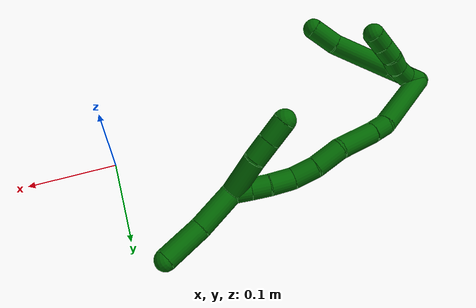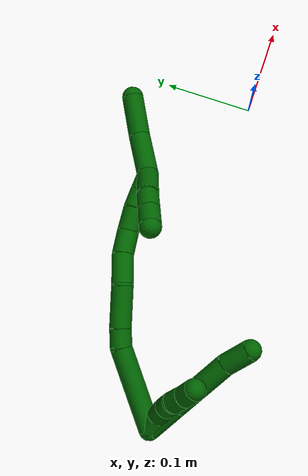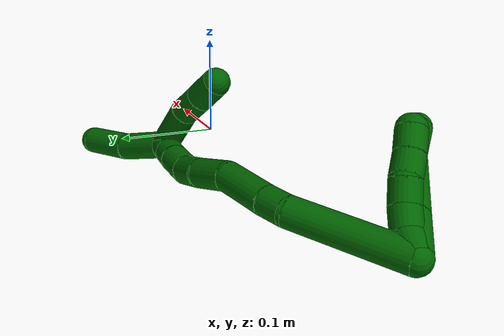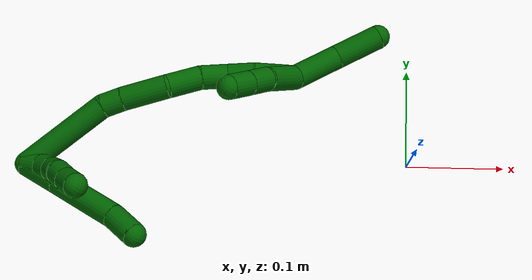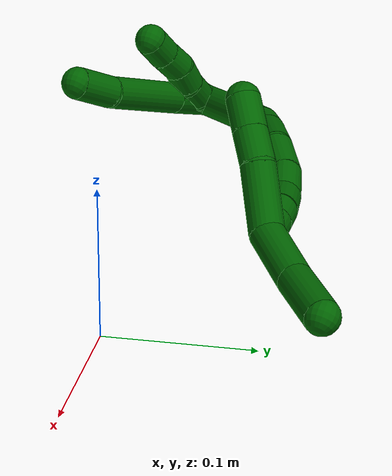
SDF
<sdf version="1.7">
 <world name="default">
  <model name="6">
   <static>0</static>
   <link name="6">
    <collision name="collision-cylinder-e_1_2_8">
     <pose>0.017341 -0.006133 -0.010673 2.62005 0.953501 2.18782</pose>
     <geometry><cylinder><radius>0.0125</radius><length>0.042531</length></cylinder></geometry>
     <surface>
      <friction><ode><mu>1.16</mu><mu2>1.16</mu2><slip1>0</slip1><slip2>0</slip2></ode></friction>
      <contact><ode><kp>1e+06</kp><kd>1</kd><max_vel>0</max_vel><min_depth>0.001</min_depth></ode></contact>
     </surface>
    </collision>
    <visual name="visual-cylinder-e_1_2_8">
     <pose>0.017341 -0.006133 -0.010673 2.62005 0.953501 2.18782</pose>
     <geometry><cylinder><radius>0.0125</radius><length>0.042531</length></cylinder></geometry>
     <material><ambient>0 0.392157 0.003922 1</ambient></material>
    </visual>
    <collision name="collision-cylinder-e_2_8_9">
     <pose>0.065241 -0.023077 -0.039488 2.6042 0.966061 2.17467</pose>
     <geometry><cylinder><radius>0.0125</radius><length>0.074294</length></cylinder></geometry>
     <surface>
      <friction><ode><mu>1.16</mu><mu2>1.16</mu2><slip1>0</slip1><slip2>0</slip2></ode></friction>
      <contact><ode><kp>1e+06</kp><kd>1</kd><max_vel>0</max_vel><min_depth>0.001</min_depth></ode></contact>
     </surface>
    </collision>
    <visual name="visual-cylinder-e_2_8_9">
     <pose>0.065241 -0.023077 -0.039488 2.6042 0.966061 2.17467</pose>
     <geometry><cylinder><radius>0.0125</radius><length>0.074294</length></cylinder></geometry>
     <material><ambient>0 0.392157 0.003922 1</ambient></material>
    </visual>
    <collision name="collision-cylinder-e_3_9_6">
     <pose>0.109509 -0.041138 -0.063517 2.25268 0.972752 1.6752</pose>
     <geometry><cylinder><radius>0.0125</radius><length>0.033174</length></cylinder></geometry>
     <surface>
      <friction><ode><mu>1.16</mu><mu2>1.16</mu2><slip1>0</slip1><slip2>0</slip2></ode></friction>
      <contact><ode><kp>1e+06</kp><kd>1</kd><max_vel>0</max_vel><min_depth>0.001</min_depth></ode></contact>
     </surface>
    </collision>
    <visual name="visual-cylinder-e_3_9_6">
     <pose>0.109509 -0.041138 -0.063517 2.25268 0.972752 1.6752</pose>
     <geometry><cylinder><radius>0.0125</radius><length>0.033174</length></cylinder></geometry>
     <material><ambient>0 0.392157 0.003922 1</ambient></material>
    </visual>
    <collision name="collision-cylinder-e_1_2_10">
     <pose>0.009375 8e-06 -0.00348 -3.13941 1.21531 -3.13846</pose>
     <geometry><cylinder><radius>0.0125</radius><length>0.02</length></cylinder></geometry>
     <surface>
      <friction><ode><mu>1.16</mu><mu2>1.16</mu2><slip1>0</slip1><slip2>0</slip2></ode></friction>
      <contact><ode><kp>1e+06</kp><kd>1</kd><max_vel>0</max_vel><min_depth>0.001</min_depth></ode></contact>
     </surface>
    </collision>
    <visual name="visual-cylinder-e_1_2_10">
     <pose>0.009375 8e-06 -0.00348 -3.13941 1.21531 -3.13846</pose>
     <geometry><cylinder><radius>0.0125</radius><length>0.02</length></cylinder></geometry>
     <material><ambient>0 0.392157 0.003922 1</ambient></material>
    </visual>
    <collision name="collision-cylinder-e_2_10_11">
     <pose>0.028605 -0.001495 -0.007727 2.0402 1.40068 1.88234</pose>
     <geometry><cylinder><radius>0.0125</radius><length>0.02</length></cylinder></geometry>
     <surface>
      <friction><ode><mu>1.16</mu><mu2>1.16</mu2><slip1>0</slip1><slip2>0</slip2></ode></friction>
      <contact><ode><kp>1e+06</kp><kd>1</kd><max_vel>0</max_vel><min_depth>0.001</min_depth></ode></contact>
     </surface>
    </collision>
    <visual name="visual-cylinder-e_2_10_11">
     <pose>0.028605 -0.001495 -0.007727 2.0402 1.40068 1.88234</pose>
     <geometry><cylinder><radius>0.0125</radius><length>0.02</length></cylinder></geometry>
     <material><ambient>0 0.392157 0.003922 1</ambient></material>
    </visual>
    <collision name="collision-cylinder-e_3_11_12">
     <pose>0.048115 -0.005055 -0.006882 0.904832 1.30701 0.7126</pose>
     <geometry><cylinder><radius>0.0125</radius><length>0.02</length></cylinder></geometry>
     <surface>
      <friction><ode><mu>1.16</mu><mu2>1.16</mu2><slip1>0</slip1><slip2>0</slip2></ode></friction>
      <contact><ode><kp>1e+06</kp><kd>1</kd><max_vel>0</max_vel><min_depth>0.001</min_depth></ode></contact>
     </surface>
    </collision>
    <visual name="visual-cylinder-e_3_11_12">
     <pose>0.048115 -0.005055 -0.006882 0.904832 1.30701 0.7126</pose>
     <geometry><cylinder><radius>0.0125</radius><length>0.02</length></cylinder></geometry>
     <material><ambient>0 0.392157 0.003922 1</ambient></material>
    </visual>
    <collision name="collision-cylinder-e_4_12_13">
     <pose>0.067036 -0.010834 -0.005728 1.69271 1.18564 1.30129</pose>
     <geometry><cylinder><radius>0.0125</radius><length>0.02</length></cylinder></geometry>
     <surface>
      <friction><ode><mu>1.16</mu><mu2>1.16</mu2><slip1>0</slip1><slip2>0</slip2></ode></friction>
      <contact><ode><kp>1e+06</kp><kd>1</kd><max_vel>0</max_vel><min_depth>0.001</min_depth></ode></contact>
     </surface>
    </collision>
    <visual name="visual-cylinder-e_4_12_13">
     <pose>0.067036 -0.010834 -0.005728 1.69271 1.18564 1.30129</pose>
     <geometry><cylinder><radius>0.0125</radius><length>0.02</length></cylinder></geometry>
     <material><ambient>0 0.392157 0.003922 1</ambient></material>
    </visual>
    <collision name="collision-cylinder-e_5_13_5">
     <pose>0.085868 -0.017479 -0.006312 1.61442 1.27461 1.3166</pose>
     <geometry><cylinder><radius>0.0125</radius><length>0.02</length></cylinder></geometry>
     <surface>
      <friction><ode><mu>1.16</mu><mu2>1.16</mu2><slip1>0</slip1><slip2>0</slip2></ode></friction>
      <contact><ode><kp>1e+06</kp><kd>1</kd><max_vel>0</max_vel><min_depth>0.001</min_depth></ode></contact>
     </surface>
    </collision>
    <visual name="visual-cylinder-e_5_13_5">
     <pose>0.085868 -0.017479 -0.006312 1.61442 1.27461 1.3166</pose>
     <geometry><cylinder><radius>0.0125</radius><length>0.02</length></cylinder></geometry>
     <material><ambient>0 0.392157 0.003922 1</ambient></material>
    </visual>
    <collision name="collision-cylinder-e_1_2_14">
     <pose>0.02629 0.037345 -0.016615 -1.98941 0.571576 -0.849579</pose>
     <geometry><cylinder><radius>0.0125</radius><length>0.0972</length></cylinder></geometry>
     <surface>
      <friction><ode><mu>1.16</mu><mu2>1.16</mu2><slip1>0</slip1><slip2>0</slip2></ode></friction>
      <contact><ode><kp>1e+06</kp><kd>1</kd><max_vel>0</max_vel><min_depth>0.001</min_depth></ode></contact>
     </surface>
    </collision>
    <visual name="visual-cylinder-e_1_2_14">
     <pose>0.02629 0.037345 -0.016615 -1.98941 0.571576 -0.849579</pose>
     <geometry><cylinder><radius>0.0125</radius><length>0.0972</length></cylinder></geometry>
     <material><ambient>0 0.392157 0.003922 1</ambient></material>
    </visual>
    <collision name="collision-cylinder-e_2_14_15">
     <pose>0.059447 0.080765 -0.0391 -2.33905 0.682594 -1.39397</pose>
     <geometry><cylinder><radius>0.0125</radius><length>0.02177</length></cylinder></geometry>
     <surface>
      <friction><ode><mu>1.16</mu><mu2>1.16</mu2><slip1>0</slip1><slip2>0</slip2></ode></friction>
      <contact><ode><kp>1e+06</kp><kd>1</kd><max_vel>0</max_vel><min_depth>0.001</min_depth></ode></contact>
     </surface>
    </collision>
    <visual name="visual-cylinder-e_2_14_15">
     <pose>0.059447 0.080765 -0.0391 -2.33905 0.682594 -1.39397</pose>
     <geometry><cylinder><radius>0.0125</radius><length>0.02177</length></cylinder></geometry>
     <material><ambient>0 0.392157 0.003922 1</ambient></material>
    </visual>
    <collision name="collision-cylinder-e_3_15_16">
     <pose>0.08243 0.098569 -0.058439 -2.42514 0.734072 -1.59736</pose>
     <geometry><cylinder><radius>0.0125</radius><length>0.048115</length></cylinder></geometry>
     <surface>
      <friction><ode><mu>1.16</mu><mu2>1.16</mu2><slip1>0</slip1><slip2>0</slip2></ode></friction>
      <contact><ode><kp>1e+06</kp><kd>1</kd><max_vel>0</max_vel><min_depth>0.001</min_depth></ode></contact>
     </surface>
    </collision>
    <visual name="visual-cylinder-e_3_15_16">
     <pose>0.08243 0.098569 -0.058439 -2.42514 0.734072 -1.59736</pose>
     <geometry><cylinder><radius>0.0125</radius><length>0.048115</length></cylinder></geometry>
     <material><ambient>0 0.392157 0.003922 1</ambient></material>
    </visual>
    <collision name="collision-cylinder-e_4_16_17">
     <pose>0.105902 0.119929 -0.084497 -2.48852 0.434559 -1.15538</pose>
     <geometry><cylinder><radius>0.0125</radius><length>0.034946</length></cylinder></geometry>
     <surface>
      <friction><ode><mu>1.16</mu><mu2>1.16</mu2><slip1>0</slip1><slip2>0</slip2></ode></friction>
      <contact><ode><kp>1e+06</kp><kd>1</kd><max_vel>0</max_vel><min_depth>0.001</min_depth></ode></contact>
     </surface>
    </collision>
    <visual name="visual-cylinder-e_4_16_17">
     <pose>0.105902 0.119929 -0.084497 -2.48852 0.434559 -1.15538</pose>
     <geometry><cylinder><radius>0.0125</radius><length>0.034946</length></cylinder></geometry>
     <material><ambient>0 0.392157 0.003922 1</ambient></material>
    </visual>
    <collision name="collision-cylinder-e_5_17_18">
     <pose>0.119828 0.134892 -0.108596 -2.70775 0.477802 -1.67057</pose>
     <geometry><cylinder><radius>0.0125</radius><length>0.028574</length></cylinder></geometry>
     <surface>
      <friction><ode><mu>1.16</mu><mu2>1.16</mu2><slip1>0</slip1><slip2>0</slip2></ode></friction>
      <contact><ode><kp>1e+06</kp><kd>1</kd><max_vel>0</max_vel><min_depth>0.001</min_depth></ode></contact>
     </surface>
    </collision>
    <visual name="visual-cylinder-e_5_17_18">
     <pose>0.119828 0.134892 -0.108596 -2.70775 0.477802 -1.67057</pose>
     <geometry><cylinder><radius>0.0125</radius><length>0.028574</length></cylinder></geometry>
     <material><ambient>0 0.392157 0.003922 1</ambient></material>
    </visual>
    <collision name="collision-cylinder-e_6_18_19">
     <pose>0.135966 0.144349 -0.129421 -2.7248 0.75421 -2.16076</pose>
     <geometry><cylinder><radius>0.0125</radius><length>0.027949</length></cylinder></geometry>
     <surface>
      <friction><ode><mu>1.16</mu><mu2>1.16</mu2><slip1>0</slip1><slip2>0</slip2></ode></friction>
      <contact><ode><kp>1e+06</kp><kd>1</kd><max_vel>0</max_vel><min_depth>0.001</min_depth></ode></contact>
     </surface>
    </collision>
    <visual name="visual-cylinder-e_6_18_19">
     <pose>0.135966 0.144349 -0.129421 -2.7248 0.75421 -2.16076</pose>
     <geometry><cylinder><radius>0.0125</radius><length>0.027949</length></cylinder></geometry>
     <material><ambient>0 0.392157 0.003922 1</ambient></material>
    </visual>
    <collision name="collision-cylinder-e_7_19_20">
     <pose>0.152373 0.150545 -0.146464 -2.8795 0.707023 -2.4555</pose>
     <geometry><cylinder><radius>0.0125</radius><length>0.021053</length></cylinder></geometry>
     <surface>
      <friction><ode><mu>1.16</mu><mu2>1.16</mu2><slip1>0</slip1><slip2>0</slip2></ode></friction>
      <contact><ode><kp>1e+06</kp><kd>1</kd><max_vel>0</max_vel><min_depth>0.001</min_depth></ode></contact>
     </surface>
    </collision>
    <visual name="visual-cylinder-e_7_19_20">
     <pose>0.152373 0.150545 -0.146464 -2.8795 0.707023 -2.4555</pose>
     <geometry><cylinder><radius>0.0125</radius><length>0.021053</length></cylinder></geometry>
     <material><ambient>0 0.392157 0.003922 1</ambient></material>
    </visual>
    <collision name="collision-cylinder-e_8_20_1">
     <pose>0.166061 0.15444 -0.161523 -2.89808 0.736788 -2.52766</pose>
     <geometry><cylinder><radius>0.0125</radius><length>0.020393</length></cylinder></geometry>
     <surface>
      <friction><ode><mu>1.16</mu><mu2>1.16</mu2><slip1>0</slip1><slip2>0</slip2></ode></friction>
      <contact><ode><kp>1e+06</kp><kd>1</kd><max_vel>0</max_vel><min_depth>0.001</min_depth></ode></contact>
     </surface>
    </collision>
    <visual name="visual-cylinder-e_8_20_1">
     <pose>0.166061 0.15444 -0.161523 -2.89808 0.736788 -2.52766</pose>
     <geometry><cylinder><radius>0.0125</radius><length>0.020393</length></cylinder></geometry>
     <material><ambient>0 0.392157 0.003922 1</ambient></material>
    </visual>
    <collision name="collision-cylinder-e_1_1_21">
     <pose>0.180938 0.174174 -0.185159 -2.3093 0.319915 -0.700033</pose>
     <geometry><cylinder><radius>0.0125</radius><length>0.051039</length></cylinder></geometry>
     <surface>
      <friction><ode><mu>1.16</mu><mu2>1.16</mu2><slip1>0</slip1><slip2>0</slip2></ode></friction>
      <contact><ode><kp>1e+06</kp><kd>1</kd><max_vel>0</max_vel><min_depth>0.001</min_depth></ode></contact>
     </surface>
    </collision>
    <visual name="visual-cylinder-e_1_1_21">
     <pose>0.180938 0.174174 -0.185159 -2.3093 0.319915 -0.700033</pose>
     <geometry><cylinder><radius>0.0125</radius><length>0.051039</length></cylinder></geometry>
     <material><ambient>0 0.392157 0.003922 1</ambient></material>
    </visual>
    <collision name="collision-cylinder-e_2_21_4">
     <pose>0.200423 0.208704 -0.215319 -2.26571 0.487138 -0.975788</pose>
     <geometry><cylinder><radius>0.0125</radius><length>0.048961</length></cylinder></geometry>
     <surface>
      <friction><ode><mu>1.16</mu><mu2>1.16</mu2><slip1>0</slip1><slip2>0</slip2></ode></friction>
      <contact><ode><kp>1e+06</kp><kd>1</kd><max_vel>0</max_vel><min_depth>0.001</min_depth></ode></contact>
     </surface>
    </collision>
    <visual name="visual-cylinder-e_2_21_4">
     <pose>0.200423 0.208704 -0.215319 -2.26571 0.487138 -0.975788</pose>
     <geometry><cylinder><radius>0.0125</radius><length>0.048961</length></cylinder></geometry>
     <material><ambient>0 0.392157 0.003922 1</ambient></material>
    </visual>
    <collision name="collision-cylinder-e_1_1_22">
     <pose>0.178583 0.146192 -0.147715 0.444579 0.237621 0.053949</pose>
     <geometry><cylinder><radius>0.0125</radius><length>0.048178</length></cylinder></geometry>
     <surface>
      <friction><ode><mu>1.16</mu><mu2>1.16</mu2><slip1>0</slip1><slip2>0</slip2></ode></friction>
      <contact><ode><kp>1e+06</kp><kd>1</kd><max_vel>0</max_vel><min_depth>0.001</min_depth></ode></contact>
     </surface>
    </collision>
    <visual name="visual-cylinder-e_1_1_22">
     <pose>0.178583 0.146192 -0.147715 0.444579 0.237621 0.053949</pose>
     <geometry><cylinder><radius>0.0125</radius><length>0.048178</length></cylinder></geometry>
     <material><ambient>0 0.392157 0.003922 1</ambient></material>
    </visual>
    <collision name="collision-cylinder-e_2_22_23">
     <pose>0.185024 0.129336 -0.115791 0.561529 0.060428 0.017431</pose>
     <geometry><cylinder><radius>0.0125</radius><length>0.025536</length></cylinder></geometry>
     <surface>
      <friction><ode><mu>1.16</mu><mu2>1.16</mu2><slip1>0</slip1><slip2>0</slip2></ode></friction>
      <contact><ode><kp>1e+06</kp><kd>1</kd><max_vel>0</max_vel><min_depth>0.001</min_depth></ode></contact>
     </surface>
    </collision>
    <visual name="visual-cylinder-e_2_22_23">
     <pose>0.185024 0.129336 -0.115791 0.561529 0.060428 0.017431</pose>
     <geometry><cylinder><radius>0.0125</radius><length>0.025536</length></cylinder></geometry>
     <material><ambient>0 0.392157 0.003922 1</ambient></material>
    </visual>
    <collision name="collision-cylinder-e_3_23_3">
     <pose>0.186756 0.115733 -0.093808 0.546976 0.073143 0.020526</pose>
     <geometry><cylinder><radius>0.0125</radius><length>0.026286</length></cylinder></geometry>
     <surface>
      <friction><ode><mu>1.16</mu><mu2>1.16</mu2><slip1>0</slip1><slip2>0</slip2></ode></friction>
      <contact><ode><kp>1e+06</kp><kd>1</kd><max_vel>0</max_vel><min_depth>0.001</min_depth></ode></contact>
     </surface>
    </collision>
    <visual name="visual-cylinder-e_3_23_3">
     <pose>0.186756 0.115733 -0.093808 0.546976 0.073143 0.020526</pose>
     <geometry><cylinder><radius>0.0125</radius><length>0.026286</length></cylinder></geometry>
     <material><ambient>0 0.392157 0.003922 1</ambient></material>
    </visual>
    <collision name="collision-sphere-3">
     <pose>0.187716 0.108915 -0.082613 0 -0 0</pose>
     <geometry><sphere><radius>0.0125</radius></sphere></geometry>
     <surface>
      <friction><ode><mu>1.16</mu><mu2>1.16</mu2><slip1>0</slip1><slip2>0</slip2></ode></friction>
      <contact><ode><kp>1e+06</kp><kd>1</kd><max_vel>0</max_vel><min_depth>0.001</min_depth></ode></contact>
     </surface>
    </collision>
    <visual name="visual-sphere-3">
     <pose>0.187716 0.108915 -0.082613 0 -0 0</pose>
     <geometry><sphere><radius>0.0125</radius></sphere></geometry>
     <material><ambient>0 0.392157 0.003922 1</ambient></material>
    </visual>
    <collision name="collision-sphere-23">
     <pose>0.185795 0.12255 -0.105004 0 -0 0</pose>
     <geometry><sphere><radius>0.0125</radius></sphere></geometry>
     <surface>
      <friction><ode><mu>1.16</mu><mu2>1.16</mu2><slip1>0</slip1><slip2>0</slip2></ode></friction>
      <contact><ode><kp>1e+06</kp><kd>1</kd><max_vel>0</max_vel><min_depth>0.001</min_depth></ode></contact>
     </surface>
    </collision>
    <visual name="visual-sphere-23">
     <pose>0.185795 0.12255 -0.105004 0 -0 0</pose>
     <geometry><sphere><radius>0.0125</radius></sphere></geometry>
     <material><ambient>0 0.392157 0.003922 1</ambient></material>
    </visual>
    <collision name="collision-sphere-22">
     <pose>0.184253 0.136123 -0.126579 0 -0 0</pose>
     <geometry><sphere><radius>0.0125</radius></sphere></geometry>
     <surface>
      <friction><ode><mu>1.16</mu><mu2>1.16</mu2><slip1>0</slip1><slip2>0</slip2></ode></friction>
      <contact><ode><kp>1e+06</kp><kd>1</kd><max_vel>0</max_vel><min_depth>0.001</min_depth></ode></contact>
     </surface>
    </collision>
    <visual name="visual-sphere-22">
     <pose>0.184253 0.136123 -0.126579 0 -0 0</pose>
     <geometry><sphere><radius>0.0125</radius></sphere></geometry>
     <material><ambient>0 0.392157 0.003922 1</ambient></material>
    </visual>
    <collision name="collision-sphere-4">
     <pose>0.211882 0.225321 -0.229171 0 -0 0</pose>
     <geometry><sphere><radius>0.0125</radius></sphere></geometry>
     <surface>
      <friction><ode><mu>1.16</mu><mu2>1.16</mu2><slip1>0</slip1><slip2>0</slip2></ode></friction>
      <contact><ode><kp>1e+06</kp><kd>1</kd><max_vel>0</max_vel><min_depth>0.001</min_depth></ode></contact>
     </surface>
    </collision>
    <visual name="visual-sphere-4">
     <pose>0.211882 0.225321 -0.229171 0 -0 0</pose>
     <geometry><sphere><radius>0.0125</radius></sphere></geometry>
     <material><ambient>0 0.392157 0.003922 1</ambient></material>
    </visual>
    <collision name="collision-sphere-21">
     <pose>0.188964 0.192088 -0.201467 0 -0 0</pose>
     <geometry><sphere><radius>0.0125</radius></sphere></geometry>
     <surface>
      <friction><ode><mu>1.16</mu><mu2>1.16</mu2><slip1>0</slip1><slip2>0</slip2></ode></friction>
      <contact><ode><kp>1e+06</kp><kd>1</kd><max_vel>0</max_vel><min_depth>0.001</min_depth></ode></contact>
     </surface>
    </collision>
    <visual name="visual-sphere-21">
     <pose>0.188964 0.192088 -0.201467 0 -0 0</pose>
     <geometry><sphere><radius>0.0125</radius></sphere></geometry>
     <material><ambient>0 0.392157 0.003922 1</ambient></material>
    </visual>
    <collision name="collision-sphere-1">
     <pose>0.172912 0.156261 -0.168852 0 -0 0</pose>
     <geometry><sphere><radius>0.0125</radius></sphere></geometry>
     <surface>
      <friction><ode><mu>1.16</mu><mu2>1.16</mu2><slip1>0</slip1><slip2>0</slip2></ode></friction>
      <contact><ode><kp>1e+06</kp><kd>1</kd><max_vel>0</max_vel><min_depth>0.001</min_depth></ode></contact>
     </surface>
    </collision>
    <visual name="visual-sphere-1">
     <pose>0.172912 0.156261 -0.168852 0 -0 0</pose>
     <geometry><sphere><radius>0.0125</radius></sphere></geometry>
     <material><ambient>0 0.392157 0.003922 1</ambient></material>
    </visual>
    <collision name="collision-sphere-11">
     <pose>0.038461 -0.003004 -0.008492 0 -0 0</pose>
     <geometry><sphere><radius>0.0125</radius></sphere></geometry>
     <surface>
      <friction><ode><mu>1.16</mu><mu2>1.16</mu2><slip1>0</slip1><slip2>0</slip2></ode></friction>
      <contact><ode><kp>1e+06</kp><kd>1</kd><max_vel>0</max_vel><min_depth>0.001</min_depth></ode></contact>
     </surface>
    </collision>
    <visual name="visual-sphere-11">
     <pose>0.038461 -0.003004 -0.008492 0 -0 0</pose>
     <geometry><sphere><radius>0.0125</radius></sphere></geometry>
     <material><ambient>0 0.392157 0.003922 1</ambient></material>
    </visual>
    <collision name="collision-sphere-10">
     <pose>0.01875 1.5e-05 -0.006961 0 -0 0</pose>
     <geometry><sphere><radius>0.0125</radius></sphere></geometry>
     <surface>
      <friction><ode><mu>1.16</mu><mu2>1.16</mu2><slip1>0</slip1><slip2>0</slip2></ode></friction>
      <contact><ode><kp>1e+06</kp><kd>1</kd><max_vel>0</max_vel><min_depth>0.001</min_depth></ode></contact>
     </surface>
    </collision>
    <visual name="visual-sphere-10">
     <pose>0.01875 1.5e-05 -0.006961 0 -0 0</pose>
     <geometry><sphere><radius>0.0125</radius></sphere></geometry>
     <material><ambient>0 0.392157 0.003922 1</ambient></material>
    </visual>
    <collision name="collision-sphere-6">
     <pose>0.123217 -0.048389 -0.069403 0 -0 0</pose>
     <geometry><sphere><radius>0.0125</radius></sphere></geometry>
     <surface>
      <friction><ode><mu>1.16</mu><mu2>1.16</mu2><slip1>0</slip1><slip2>0</slip2></ode></friction>
      <contact><ode><kp>1e+06</kp><kd>1</kd><max_vel>0</max_vel><min_depth>0.001</min_depth></ode></contact>
     </surface>
    </collision>
    <visual name="visual-sphere-6">
     <pose>0.123217 -0.048389 -0.069403 0 -0 0</pose>
     <geometry><sphere><radius>0.0125</radius></sphere></geometry>
     <material><ambient>0 0.392157 0.003922 1</ambient></material>
    </visual>
    <collision name="collision-sphere-9">
     <pose>0.0958 -0.033888 -0.057631 0 -0 0</pose>
     <geometry><sphere><radius>0.0125</radius></sphere></geometry>
     <surface>
      <friction><ode><mu>1.16</mu><mu2>1.16</mu2><slip1>0</slip1><slip2>0</slip2></ode></friction>
      <contact><ode><kp>1e+06</kp><kd>1</kd><max_vel>0</max_vel><min_depth>0.001</min_depth></ode></contact>
     </surface>
    </collision>
    <visual name="visual-sphere-9">
     <pose>0.0958 -0.033888 -0.057631 0 -0 0</pose>
     <geometry><sphere><radius>0.0125</radius></sphere></geometry>
     <material><ambient>0 0.392157 0.003922 1</ambient></material>
    </visual>
    <collision name="collision-sphere-2">
     <geometry><sphere><radius>0.0125</radius></sphere></geometry>
     <surface>
      <friction><ode><mu>1.16</mu><mu2>1.16</mu2><slip1>0</slip1><slip2>0</slip2></ode></friction>
      <contact><ode><kp>1e+06</kp><kd>1</kd><max_vel>0</max_vel><min_depth>0.001</min_depth></ode></contact>
     </surface>
    </collision>
    <visual name="visual-sphere-2">
     <geometry><sphere><radius>0.0125</radius></sphere></geometry>
     <material><ambient>0 0.392157 0.003922 1</ambient></material>
    </visual>
    <collision name="collision-sphere-19">
     <pose>0.145535 0.148472 -0.138734 0 -0 0</pose>
     <geometry><sphere><radius>0.0125</radius></sphere></geometry>
     <surface>
      <friction><ode><mu>1.16</mu><mu2>1.16</mu2><slip1>0</slip1><slip2>0</slip2></ode></friction>
      <contact><ode><kp>1e+06</kp><kd>1</kd><max_vel>0</max_vel><min_depth>0.001</min_depth></ode></contact>
     </surface>
    </collision>
    <visual name="visual-sphere-19">
     <pose>0.145535 0.148472 -0.138734 0 -0 0</pose>
     <geometry><sphere><radius>0.0125</radius></sphere></geometry>
     <material><ambient>0 0.392157 0.003922 1</ambient></material>
    </visual>
    <collision name="collision-sphere-8">
     <pose>0.034682 -0.012265 -0.021345 0 -0 0</pose>
     <geometry><sphere><radius>0.0125</radius></sphere></geometry>
     <surface>
      <friction><ode><mu>1.16</mu><mu2>1.16</mu2><slip1>0</slip1><slip2>0</slip2></ode></friction>
      <contact><ode><kp>1e+06</kp><kd>1</kd><max_vel>0</max_vel><min_depth>0.001</min_depth></ode></contact>
     </surface>
    </collision>
    <visual name="visual-sphere-8">
     <pose>0.034682 -0.012265 -0.021345 0 -0 0</pose>
     <geometry><sphere><radius>0.0125</radius></sphere></geometry>
     <material><ambient>0 0.392157 0.003922 1</ambient></material>
    </visual>
    <collision name="collision-sphere-12">
     <pose>0.057769 -0.007105 -0.005271 0 -0 0</pose>
     <geometry><sphere><radius>0.0125</radius></sphere></geometry>
     <surface>
      <friction><ode><mu>1.16</mu><mu2>1.16</mu2><slip1>0</slip1><slip2>0</slip2></ode></friction>
      <contact><ode><kp>1e+06</kp><kd>1</kd><max_vel>0</max_vel><min_depth>0.001</min_depth></ode></contact>
     </surface>
    </collision>
    <visual name="visual-sphere-12">
     <pose>0.057769 -0.007105 -0.005271 0 -0 0</pose>
     <geometry><sphere><radius>0.0125</radius></sphere></geometry>
     <material><ambient>0 0.392157 0.003922 1</ambient></material>
    </visual>
    <collision name="collision-sphere-13">
     <pose>0.076304 -0.014563 -0.006185 0 -0 0</pose>
     <geometry><sphere><radius>0.0125</radius></sphere></geometry>
     <surface>
      <friction><ode><mu>1.16</mu><mu2>1.16</mu2><slip1>0</slip1><slip2>0</slip2></ode></friction>
      <contact><ode><kp>1e+06</kp><kd>1</kd><max_vel>0</max_vel><min_depth>0.001</min_depth></ode></contact>
     </surface>
    </collision>
    <visual name="visual-sphere-13">
     <pose>0.076304 -0.014563 -0.006185 0 -0 0</pose>
     <geometry><sphere><radius>0.0125</radius></sphere></geometry>
     <material><ambient>0 0.392157 0.003922 1</ambient></material>
    </visual>
    <collision name="collision-sphere-5">
     <pose>0.095433 -0.020395 -0.006439 0 -0 0</pose>
     <geometry><sphere><radius>0.0125</radius></sphere></geometry>
     <surface>
      <friction><ode><mu>1.16</mu><mu2>1.16</mu2><slip1>0</slip1><slip2>0</slip2></ode></friction>
      <contact><ode><kp>1e+06</kp><kd>1</kd><max_vel>0</max_vel><min_depth>0.001</min_depth></ode></contact>
     </surface>
    </collision>
    <visual name="visual-sphere-5">
     <pose>0.095433 -0.020395 -0.006439 0 -0 0</pose>
     <geometry><sphere><radius>0.0125</radius></sphere></geometry>
     <material><ambient>0 0.392157 0.003922 1</ambient></material>
    </visual>
    <collision name="collision-sphere-14">
     <pose>0.052581 0.074691 -0.033231 0 -0 0</pose>
     <geometry><sphere><radius>0.0125</radius></sphere></geometry>
     <surface>
      <friction><ode><mu>1.16</mu><mu2>1.16</mu2><slip1>0</slip1><slip2>0</slip2></ode></friction>
      <contact><ode><kp>1e+06</kp><kd>1</kd><max_vel>0</max_vel><min_depth>0.001</min_depth></ode></contact>
     </surface>
    </collision>
    <visual name="visual-sphere-14">
     <pose>0.052581 0.074691 -0.033231 0 -0 0</pose>
     <geometry><sphere><radius>0.0125</radius></sphere></geometry>
     <material><ambient>0 0.392157 0.003922 1</ambient></material>
    </visual>
    <collision name="collision-sphere-15">
     <pose>0.066314 0.086839 -0.044969 0 -0 0</pose>
     <geometry><sphere><radius>0.0125</radius></sphere></geometry>
     <surface>
      <friction><ode><mu>1.16</mu><mu2>1.16</mu2><slip1>0</slip1><slip2>0</slip2></ode></friction>
      <contact><ode><kp>1e+06</kp><kd>1</kd><max_vel>0</max_vel><min_depth>0.001</min_depth></ode></contact>
     </surface>
    </collision>
    <visual name="visual-sphere-15">
     <pose>0.066314 0.086839 -0.044969 0 -0 0</pose>
     <geometry><sphere><radius>0.0125</radius></sphere></geometry>
     <material><ambient>0 0.392157 0.003922 1</ambient></material>
    </visual>
    <collision name="collision-sphere-16">
     <pose>0.098546 0.110298 -0.071909 0 -0 0</pose>
     <geometry><sphere><radius>0.0125</radius></sphere></geometry>
     <surface>
      <friction><ode><mu>1.16</mu><mu2>1.16</mu2><slip1>0</slip1><slip2>0</slip2></ode></friction>
      <contact><ode><kp>1e+06</kp><kd>1</kd><max_vel>0</max_vel><min_depth>0.001</min_depth></ode></contact>
     </surface>
    </collision>
    <visual name="visual-sphere-16">
     <pose>0.098546 0.110298 -0.071909 0 -0 0</pose>
     <geometry><sphere><radius>0.0125</radius></sphere></geometry>
     <material><ambient>0 0.392157 0.003922 1</ambient></material>
    </visual>
    <collision name="collision-sphere-17">
     <pose>0.113258 0.129559 -0.097084 0 -0 0</pose>
     <geometry><sphere><radius>0.0125</radius></sphere></geometry>
     <surface>
      <friction><ode><mu>1.16</mu><mu2>1.16</mu2><slip1>0</slip1><slip2>0</slip2></ode></friction>
      <contact><ode><kp>1e+06</kp><kd>1</kd><max_vel>0</max_vel><min_depth>0.001</min_depth></ode></contact>
     </surface>
    </collision>
    <visual name="visual-sphere-17">
     <pose>0.113258 0.129559 -0.097084 0 -0 0</pose>
     <geometry><sphere><radius>0.0125</radius></sphere></geometry>
     <material><ambient>0 0.392157 0.003922 1</ambient></material>
    </visual>
    <collision name="collision-sphere-18">
     <pose>0.126398 0.140226 -0.120108 0 -0 0</pose>
     <geometry><sphere><radius>0.0125</radius></sphere></geometry>
     <surface>
      <friction><ode><mu>1.16</mu><mu2>1.16</mu2><slip1>0</slip1><slip2>0</slip2></ode></friction>
      <contact><ode><kp>1e+06</kp><kd>1</kd><max_vel>0</max_vel><min_depth>0.001</min_depth></ode></contact>
     </surface>
    </collision>
    <visual name="visual-sphere-18">
     <pose>0.126398 0.140226 -0.120108 0 -0 0</pose>
     <geometry><sphere><radius>0.0125</radius></sphere></geometry>
     <material><ambient>0 0.392157 0.003922 1</ambient></material>
    </visual>
    <collision name="collision-sphere-20">
     <pose>0.15921 0.152619 -0.154193 0 -0 0</pose>
     <geometry><sphere><radius>0.0125</radius></sphere></geometry>
     <surface>
      <friction><ode><mu>1.16</mu><mu2>1.16</mu2><slip1>0</slip1><slip2>0</slip2></ode></friction>
      <contact><ode><kp>1e+06</kp><kd>1</kd><max_vel>0</max_vel><min_depth>0.001</min_depth></ode></contact>
     </surface>
    </collision>
    <visual name="visual-sphere-20">
     <pose>0.15921 0.152619 -0.154193 0 -0 0</pose>
     <geometry><sphere><radius>0.0125</radius></sphere></geometry>
     <material><ambient>0 0.392157 0.003922 1</ambient></material>
    </visual>
    <inertial>
     <pose>0.102157 0.075985 -0.079944 0 -0 0</pose>
     <mass>0.75</mass>
     <inertia>
      <ixx>3.3e-05</ixx>
      <ixy>0</ixy>
      <ixz>0</ixz>
      <iyy>2.3e-05</iyy>
      <iyz>0</iyz>
      <izz>-0.000204</izz>
     </inertia>
    </inertial>
   </link>
   <pose>-0.388545 -0.007188 0.012853 -0.092543 -0.861559 -0.177301</pose>
  </model>
 </world>
</sdf>
